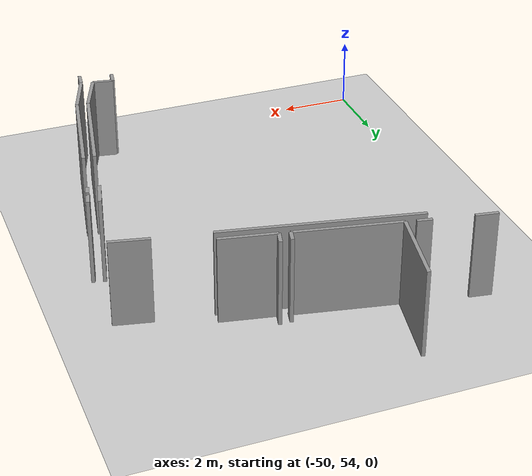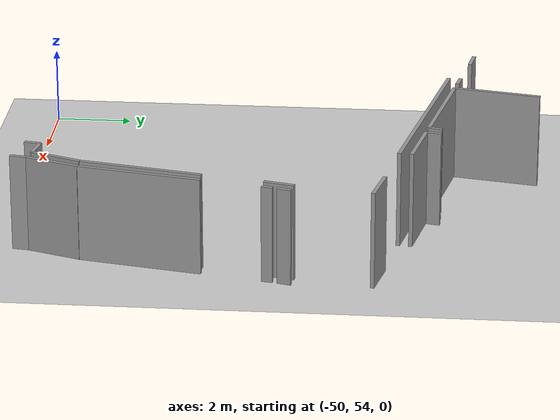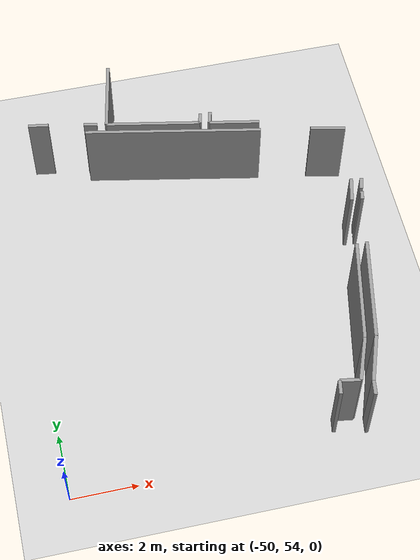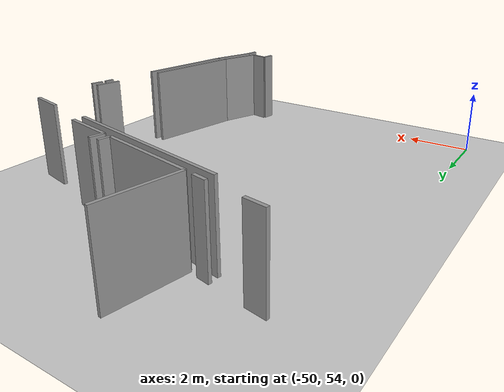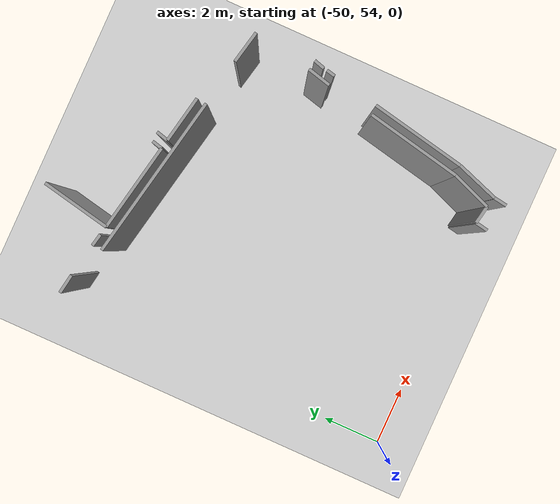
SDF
<sdf version="1.6">
 <world name="default">
  <model name="ground_plane">
   <static>1</static>
   <link name="link">
    <collision name="collision">
     <geometry><plane><normal>0 0 1</normal><size>100 100</size></plane></geometry>
     <surface><friction><ode><mu>100</mu><mu2>50</mu2></ode></friction></surface>
    </collision>
    <visual name="visual">
     <cast_shadows>0</cast_shadows>
     <geometry><plane><normal>0 0 1</normal><size>100 100</size></plane></geometry>
     <material>
      <script><uri>file://media/materials/scripts/gazebo.material</uri><name>Gazebo/Grey</name></script>
     </material>
    </visual>
   </link>
  </model>
  <model name="0510045922_A-40">
   <static>1</static>
   <link name="Wall_706">
    <collision name="Wall_706_Collision">
     <geometry><box><size>2.27722576458 0.1 2.5</size></box></geometry>
     <pose>1.13861288229 0 1.25 0 0 0</pose>
    </collision>
    <visual name="Wall_706_Visual">
     <pose>1.13861288229 0 1.25 0 0 0</pose>
     <geometry><box><size>2.27722576458 0.1 2.5</size></box></geometry>
     <material>
      <script><uri>file://media/materials/scripts/gazebo.material</uri><name>Gazebo/Grey</name></script>
      <ambient>1 1 1 1</ambient>
     </material>
    </visual>
    <pose>87.333595984 -36.1935311686 0 0 0 1.37272217764</pose>
   </link>
   <link name="Wall_709">
    <collision name="Wall_709_Collision">
     <geometry><box><size>0.344794564893 0.1 2.5</size></box></geometry>
     <pose>0.172397282447 0 1.25 0 0 0</pose>
    </collision>
    <visual name="Wall_709_Visual">
     <pose>0.172397282447 0 1.25 0 0 0</pose>
     <geometry><box><size>0.344794564893 0.1 2.5</size></box></geometry>
     <material>
      <script><uri>file://media/materials/scripts/gazebo.material</uri><name>Gazebo/Grey</name></script>
      <ambient>1 1 1 1</ambient>
     </material>
    </visual>
    <pose>90.2782487132 -36.4151744297 0 0 0 -1.8127354856</pose>
   </link>
   <link name="Wall_710">
    <collision name="Wall_710_Collision">
     <geometry><box><size>2.91562635311 0.1 2.5</size></box></geometry>
     <pose>1.45781317656 0 1.25 0 0 0</pose>
    </collision>
    <visual name="Wall_710_Visual">
     <pose>1.45781317656 0 1.25 0 0 0</pose>
     <geometry><box><size>2.91562635311 0.1 2.5</size></box></geometry>
     <material>
      <script><uri>file://media/materials/scripts/gazebo.material</uri><name>Gazebo/Grey</name></script>
      <ambient>1 1 1 1</ambient>
     </material>
    </visual>
    <pose>90.1956408464 -36.7499269238 0 0 0 2.94958266974</pose>
   </link>
   <link name="Wall_715">
    <collision name="Wall_715_Collision">
     <geometry><box><size>1.55803451759 0.1 2.5</size></box></geometry>
     <pose>0.779017258797 0 1.25 0 0 0</pose>
    </collision>
    <visual name="Wall_715_Visual">
     <pose>0.779017258797 0 1.25 0 0 0</pose>
     <geometry><box><size>1.55803451759 0.1 2.5</size></box></geometry>
     <material>
      <script><uri>file://media/materials/scripts/gazebo.material</uri><name>Gazebo/Grey</name></script>
      <ambient>1 1 1 1</ambient>
     </material>
    </visual>
    <pose>92.0193683675 -37.1075554426 0 0 0 2.94954018799</pose>
   </link>
   <link name="Wall_716">
    <collision name="Wall_716_Collision">
     <geometry><box><size>0.403858930387 0.1 2.5</size></box></geometry>
     <pose>0.201929465194 0 1.25 0 0 0</pose>
    </collision>
    <visual name="Wall_716_Visual">
     <pose>0.201929465194 0 1.25 0 0 0</pose>
     <geometry><box><size>0.403858930387 0.1 2.5</size></box></geometry>
     <material>
      <script><uri>file://media/materials/scripts/gazebo.material</uri><name>Gazebo/Grey</name></script>
      <ambient>1 1 1 1</ambient>
     </material>
    </visual>
    <pose>90.4899790303 -36.8101671221 0 0 0 1.31955915891</pose>
   </link>
   <link name="Wall_730">
    <collision name="Wall_730_Collision">
     <geometry><box><size>0.412596435742 0.1 2.5</size></box></geometry>
     <pose>0.206298217871 0 1.25 0 0 0</pose>
    </collision>
    <visual name="Wall_730_Visual">
     <pose>0.206298217871 0 1.25 0 0 0</pose>
     <geometry><box><size>0.412596435742 0.1 2.5</size></box></geometry>
     <material>
      <script><uri>file://media/materials/scripts/gazebo.material</uri><name>Gazebo/Grey</name></script>
      <ambient>1 1 1 1</ambient>
     </material>
    </visual>
    <pose>87.0466289636 -36.1310033679 0 0 0 2.94190158007</pose>
   </link>
   <link name="Wall_731">
    <collision name="Wall_731_Collision">
     <geometry><box><size>0.627977060027 0.1 2.5</size></box></geometry>
     <pose>0.313988530013 0 1.25 0 0 0</pose>
    </collision>
    <visual name="Wall_731_Visual">
     <pose>0.313988530013 0 1.25 0 0 0</pose>
     <geometry><box><size>0.627977060027 0.1 2.5</size></box></geometry>
     <material>
      <script><uri>file://media/materials/scripts/gazebo.material</uri><name>Gazebo/Grey</name></script>
      <ambient>1 1 1 1</ambient>
     </material>
    </visual>
    <pose>85.5571455805 -35.8376818962 0 0 0 2.9814346188</pose>
   </link>
   <link name="Wall_734">
    <collision name="Wall_734_Collision">
     <geometry><box><size>0.361081013896 0.1 2.5</size></box></geometry>
     <pose>0.180540506948 0 1.25 0 0 0</pose>
    </collision>
    <visual name="Wall_734_Visual">
     <pose>0.180540506948 0 1.25 0 0 0</pose>
     <geometry><box><size>0.361081013896 0.1 2.5</size></box></geometry>
     <material>
      <script><uri>file://media/materials/scripts/gazebo.material</uri><name>Gazebo/Grey</name></script>
      <ambient>1 1 1 1</ambient>
     </material>
    </visual>
    <pose>94.4340598589 -40.2408082862 0 0 0 1.29269005398</pose>
   </link>
   <link name="Wall_736">
    <collision name="Wall_736_Collision">
     <geometry><box><size>0.427438390507 0.1 2.5</size></box></geometry>
     <pose>0.213719195254 0 1.25 0 0 0</pose>
    </collision>
    <visual name="Wall_736_Visual">
     <pose>0.213719195254 0 1.25 0 0 0</pose>
     <geometry><box><size>0.427438390507 0.1 2.5</size></box></geometry>
     <material>
      <script><uri>file://media/materials/scripts/gazebo.material</uri><name>Gazebo/Grey</name></script>
      <ambient>1 1 1 1</ambient>
     </material>
    </visual>
    <pose>92.9178877804 -46.9996568596 0 0 0 1.42578768523</pose>
   </link>
   <link name="Wall_737">
    <collision name="Wall_737_Collision">
     <geometry><box><size>1.42522463674 0.1 2.5</size></box></geometry>
     <pose>0.712612318371 0 1.25 0 0 0</pose>
    </collision>
    <visual name="Wall_737_Visual">
     <pose>0.712612318371 0 1.25 0 0 0</pose>
     <geometry><box><size>1.42522463674 0.1 2.5</size></box></geometry>
     <material>
      <script><uri>file://media/materials/scripts/gazebo.material</uri><name>Gazebo/Grey</name></script>
      <ambient>1 1 1 1</ambient>
     </material>
    </visual>
    <pose>92.979653047 -46.5767045816 0 0 0 1.23607413677</pose>
   </link>
   <link name="Wall_738">
    <collision name="Wall_738_Collision">
     <geometry><box><size>3.14812933724 0.1 2.5</size></box></geometry>
     <pose>1.57406466862 0 1.25 0 0 0</pose>
    </collision>
    <visual name="Wall_738_Visual">
     <pose>1.57406466862 0 1.25 0 0 0</pose>
     <geometry><box><size>3.14812933724 0.1 2.5</size></box></geometry>
     <material>
      <script><uri>file://media/materials/scripts/gazebo.material</uri><name>Gazebo/Grey</name></script>
      <ambient>1 1 1 1</ambient>
     </material>
    </visual>
    <pose>93.4478490182 -45.2305776196 0 0 0 1.37463584248</pose>
   </link>
   <link name="Wall_739">
    <collision name="Wall_739_Collision">
     <geometry><box><size>0.282367105808 0.1 2.5</size></box></geometry>
     <pose>0.141183552904 0 1.25 0 0 0</pose>
    </collision>
    <visual name="Wall_739_Visual">
     <pose>0.141183552904 0 1.25 0 0 0</pose>
     <geometry><box><size>0.282367105808 0.1 2.5</size></box></geometry>
     <material>
      <script><uri>file://media/materials/scripts/gazebo.material</uri><name>Gazebo/Grey</name></script>
      <ambient>1 1 1 1</ambient>
     </material>
    </visual>
    <pose>94.3572980873 -40.6286839931 0 0 0 1.35027227662</pose>
   </link>
   <link name="Wall_750">
    <collision name="Wall_750_Collision">
     <geometry><box><size>5.4605057305 0.1 2.5</size></box></geometry>
     <pose>2.73025286525 0 1.25 0 0 0</pose>
    </collision>
    <visual name="Wall_750_Visual">
     <pose>2.73025286525 0 1.25 0 0 0</pose>
     <geometry><box><size>5.4605057305 0.1 2.5</size></box></geometry>
     <material>
      <script><uri>file://media/materials/scripts/gazebo.material</uri><name>Gazebo/Grey</name></script>
      <ambient>1 1 1 1</ambient>
     </material>
    </visual>
    <pose>86.6340979856 -36.3595094364 0 0 0 -0.195441973757</pose>
   </link>
   <link name="Wall_751">
    <collision name="Wall_751_Collision">
     <geometry><box><size>1.08367026057 0.1 2.5</size></box></geometry>
     <pose>0.541835130286 0 1.25 0 0 0</pose>
    </collision>
    <visual name="Wall_751_Visual">
     <pose>0.541835130286 0 1.25 0 0 0</pose>
     <geometry><box><size>1.08367026057 0.1 2.5</size></box></geometry>
     <material>
      <script><uri>file://media/materials/scripts/gazebo.material</uri><name>Gazebo/Grey</name></script>
      <ambient>1 1 1 1</ambient>
     </material>
    </visual>
    <pose>93.5164770922 -37.6929274957 0 0 0 -0.211977955307</pose>
   </link>
   <link name="Wall_753">
    <collision name="Wall_753_Collision">
     <geometry><box><size>0.781749629115 0.1 2.5</size></box></geometry>
     <pose>0.390874814557 0 1.25 0 0 0</pose>
    </collision>
    <visual name="Wall_753_Visual">
     <pose>0.390874814557 0 1.25 0 0 0</pose>
     <geometry><box><size>0.781749629115 0.1 2.5</size></box></geometry>
     <material>
      <script><uri>file://media/materials/scripts/gazebo.material</uri><name>Gazebo/Grey</name></script>
      <ambient>1 1 1 1</ambient>
     </material>
    </visual>
    <pose>94.2274131029 -39.8412403889 0 0 0 -1.81411897062</pose>
   </link>
   <link name="Wall_754">
    <collision name="Wall_754_Collision">
     <geometry><box><size>3.14002657221 0.1 2.5</size></box></geometry>
     <pose>1.57001328611 0 1.25 0 0 0</pose>
    </collision>
    <visual name="Wall_754_Visual">
     <pose>1.57001328611 0 1.25 0 0 0</pose>
     <geometry><box><size>3.14002657221 0.1 2.5</size></box></geometry>
     <material>
      <script><uri>file://media/materials/scripts/gazebo.material</uri><name>Gazebo/Grey</name></script>
      <ambient>1 1 1 1</ambient>
     </material>
    </visual>
    <pose>93.7500667217 -42.1456186058 0 0 0 -1.77217656178</pose>
   </link>
   <link name="Wall_755">
    <collision name="Wall_755_Collision">
     <geometry><box><size>1.34853673682 0.1 2.5</size></box></geometry>
     <pose>0.67426836841 0 1.25 0 0 0</pose>
    </collision>
    <visual name="Wall_755_Visual">
     <pose>0.67426836841 0 1.25 0 0 0</pose>
     <geometry><box><size>1.34853673682 0.1 2.5</size></box></geometry>
     <material>
      <script><uri>file://media/materials/scripts/gazebo.material</uri><name>Gazebo/Grey</name></script>
      <ambient>1 1 1 1</ambient>
     </material>
    </visual>
    <pose>93.1219927559 -45.2221897439 0 0 0 -1.93100092505</pose>
   </link>
   <link name="Wall_756">
    <collision name="Wall_756_Collision">
     <geometry><box><size>0.593780874212 0.1 2.5</size></box></geometry>
     <pose>0.296890437106 0 1.25 0 0 0</pose>
    </collision>
    <visual name="Wall_756_Visual">
     <pose>0.296890437106 0 1.25 0 0 0</pose>
     <geometry><box><size>0.593780874212 0.1 2.5</size></box></geometry>
     <material>
      <script><uri>file://media/materials/scripts/gazebo.material</uri><name>Gazebo/Grey</name></script>
      <ambient>1 1 1 1</ambient>
     </material>
    </visual>
    <pose>92.6466797992 -46.4841837707 0 0 0 2.96560619938</pose>
   </link>
   <link name="Wall_757">
    <collision name="Wall_757_Collision">
     <geometry><box><size>0.410612114406 0.1 2.5</size></box></geometry>
     <pose>0.205306057203 0 1.25 0 0 0</pose>
    </collision>
    <visual name="Wall_757_Visual">
     <pose>0.205306057203 0 1.25 0 0 0</pose>
     <geometry><box><size>0.410612114406 0.1 2.5</size></box></geometry>
     <material>
      <script><uri>file://media/materials/scripts/gazebo.material</uri><name>Gazebo/Grey</name></script>
      <ambient>1 1 1 1</ambient>
     </material>
    </visual>
    <pose>92.0620702802 -46.3802249476 0 0 0 -1.74500235881</pose>
   </link>
   <pose>-134.15 101.210036856 0 0 0 0</pose>
  </model>
 </world>
</sdf>
